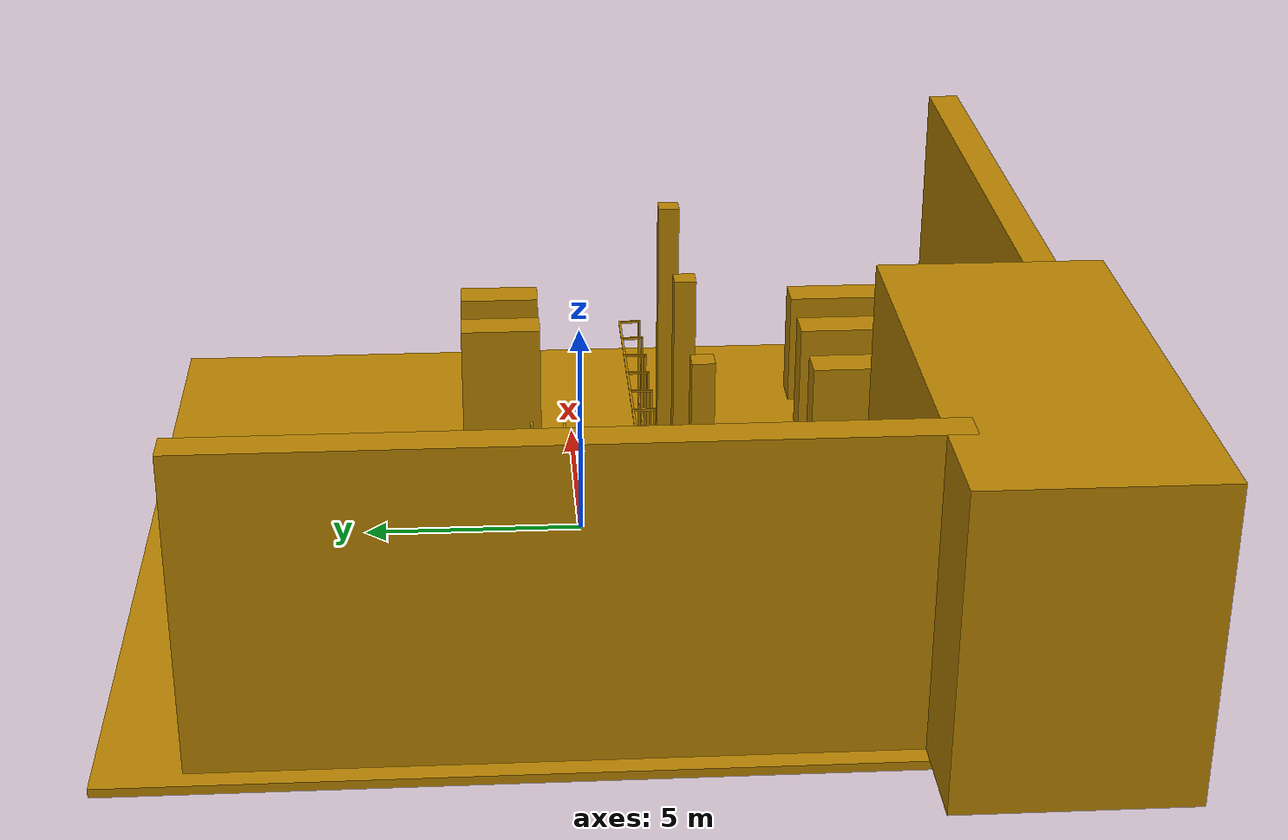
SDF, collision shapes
<?xml version="1.0" ?>
<sdf version="1.6">
  <model name="workcell">
    <static>true</static>
    <link name="link">
      <visual name="visual">
        <geometry>
          <mesh>
            <uri>model://workcell/meshes/mesh.dae</uri>
          </mesh>
        </geometry>
      </visual>

      <collision name="floor">
        <pose>0 0 -0.1 0 0 0</pose>
        <geometry>
          <box>
            <size>20.1026 20.1026 0.2</size>
          </box>
        </geometry>

          <surface>
          <contact>
            <ode>
              <max_vel>0.0</max_vel>
              <min_depth>0.001</min_depth>
            </ode>
          </contact>
          </surface>
      </collision>

      <collision name="wall1">
        <pose>4.13686 -10.02116 3.48855 0 0 0</pose>
        <geometry>
          <box>
            <size>12.07683 0.72902 6.97771</size>
          </box>
        </geometry>
      </collision>

      <collision name="wall2">
        <pose>-6.58151 -8.924 3.48855 0 0 0</pose>
        <geometry>
          <box>
            <size>10.59206 5.00198 6.97771</size>
          </box>
        </geometry>
      </collision>

      <collision name="wall3">
        <pose>-9.25721 0.6135 3.48855 0 0 0</pose>
        <geometry>
          <box>
            <size>0.72902 15.29079 6.97771</size>
          </box>
        </geometry>
      </collision>

      <collision name="rack1">
        <pose>7.35056 1.74430 1.41643054 0 0 0</pose>
        <geometry>
          <box>
            <size>0.84444041 1.95580823 2.83286108</size>
          </box>
        </geometry>
      </collision>

      <collision name="rack2">
        <pose>5.36795 1.74430 1.41643054 0 0 0</pose>
        <geometry>
          <box>
            <size>0.84444041 1.95580823 2.83286108</size>
          </box>
        </geometry>
      </collision>

      <collision name="rack3">
        <pose>7.00142 -7.64670 1.41643054 0 0 0</pose>
        <geometry>
          <box>
            <size>0.84444041 3.91161646 2.83286108</size>
          </box>
        </geometry>
      </collision>

      <collision name="rack4">
        <pose>4.97338 -7.64670 1.41643054 0 0 0</pose>
        <geometry>
          <box>
            <size>0.84444041 3.91161646 2.83286108</size>
          </box>
        </geometry>
      </collision>

      <collision name="rack5">
        <pose>2.66949 -7.64670 1.41643054 0 0 0</pose>
        <geometry>
          <box>
            <size>0.84444041 3.91161646 2.83286108</size>
          </box>
        </geometry>
      </collision>

      <collision name="large_pallet1">
        <pose>-3.33609 6.31883 1.04257 0 0 0</pose>
        <geometry>
          <box>
            <size>2.14726 1.79349 2.08514</size>
          </box>
        </geometry>
      </collision>

      <collision name="large_pallet2">
        <pose>-5.74492 6.31883 1.04257 0 0 0</pose>
        <geometry>
          <box>
            <size>2.14726 1.79349 2.08514</size>
          </box>
        </geometry>
      </collision>

      <collision name="large_pallet3">
        <pose>-7.55868 1.91644 1.04257 0 0 0</pose>
        <geometry>
          <box>
            <size>2.14726 1.79432 2.08514</size>
          </box>
        </geometry>
      </collision>

      <collision name="empty_pallet1">
        <pose>-5.29667 1.91644 0.1636 0 0 0</pose>
        <geometry>
          <box>
            <size>2.14726 1.79349 0.32720</size>
          </box>
        </geometry>
      </collision>

      <collision name="box_pallet1">
        <pose>-1.09806 6.31883 0.61958 0 0 0</pose>
        <geometry>
          <box>
            <size>2.14726 1.79349 1.23916</size>
          </box>
        </geometry>
      </collision>

      <collision name="pole1">
        <pose>5.02174 -2.39478 3.022075 0 0 0</pose>
        <geometry>
          <box>
            <size>0.49161 0.49161 6.04415</size>
          </box>
        </geometry>
      </collision>

      <collision name="pole2">
        <pose>0.47071 -2.39478 3.022075 0 0 0</pose>
        <geometry>
          <box>
            <size>0.49161 0.49161 6.04415</size>
          </box>
        </geometry>
      </collision>

      <collision name="pole3">
        <pose>-3.93786 -2.39478 3.022075 0 0 0</pose>
        <geometry>
          <box>
            <size>0.49161 0.49161 6.04415</size>
          </box>
        </geometry>
      </collision>

      <collision name="control_panel">
        <pose>2.07015 1.16224 0.561315 0 0 0</pose>
        <geometry>
          <box>
            <size>0.86733 0.6001 1.12263</size>
          </box>
        </geometry>
      </collision>

      <visual name="bin_frame_1">
        <pose>-2 1.08385 1 0 0 0</pose>
        <geometry>
          <box>
            <size>0.05 0.05 2.0</size>
          </box>
        </geometry>
        <material>
          <ambient>0.725490196 0.517647059 0 1</ambient>
          <diffuse>0.725490196 0.517647059 0 1</diffuse>
        </material>
      </visual>
      <collision name="bin_frame_1_collision">
        <pose>-2 1.08385 1 0 0 0</pose>
        <geometry>
          <box>
            <size>0.05 0.05 2.0</size>
          </box>
        </geometry>
      </collision>
      <visual name="bin_frame_2">
        <pose>1.5 1.08385 1 0 0 0</pose>
        <geometry>
          <box>
            <size>0.05 0.05 2.0</size>
          </box>
        </geometry>
        <material>
          <ambient>0.725490196 0.517647059 0 1</ambient>
          <diffuse>0.725490196 0.517647059 0 1</diffuse>
        </material>
      </visual>
      <collision name="bin_frame_2_collision">
        <pose>1.5 1.08385 1 0 0 0</pose>
        <geometry>
          <box>
            <size>0.05 0.05 2.0</size>
          </box>
        </geometry>
      </collision>
      <visual name="bin_frame_3">
        <pose>-0.25 1.08385 2.0 0 0 0</pose>
        <geometry>
          <box>
            <size>3.55 0.05 0.05</size>
          </box>
        </geometry>
        <material>
          <ambient>0.725490196 0.517647059 0 1</ambient>
          <diffuse>0.725490196 0.517647059 0 1</diffuse>
        </material>
      </visual>
      <collision name="bin_frame_3_collision">
        <pose>-0.25 1.08385 2.0 0 0 0</pose>
        <geometry>
          <box>
            <size>3.55 0.05 0.05</size>
          </box>
        </geometry>
      </collision>

      <visual name="bin_frame_4">
        <pose>-2 0.31434 1 0 0 0</pose>
        <geometry>
          <box>
            <size>0.05 0.05 2.0</size>
          </box>
        </geometry>
        <material>
          <ambient>0.725490196 0.517647059 0 1</ambient>
          <diffuse>0.725490196 0.517647059 0 1</diffuse>
        </material>
      </visual>
      <collision name="bin_frame_4_collision">
        <pose>-2 0.31434 1 0 0 0</pose>
        <geometry>
          <box>
            <size>0.05 0.05 2.0</size>
          </box>
        </geometry>
      </collision>
      <visual name="bin_frame_5">
        <pose>1.5 0.31434 1 0 0 0</pose>
        <geometry>
          <box>
            <size>0.05 0.05 2.0</size>
          </box>
        </geometry>
        <material>
          <ambient>0.725490196 0.517647059 0 1</ambient>
          <diffuse>0.725490196 0.517647059 0 1</diffuse>
        </material>
      </visual>
      <collision name="bin_frame_5_collision">
        <pose>1.5 0.31434 1 0 0 0</pose>
        <geometry>
          <box>
            <size>0.05 0.05 2.0</size>
          </box>
        </geometry>
      </collision>
      <visual name="bin_frame_6">
        <pose>-0.25 0.31434 2.0 0 0 0</pose>
        <geometry>
          <box>
            <size>3.55 0.05 0.05</size>
          </box>
        </geometry>
        <material>
          <ambient>0.725490196 0.517647059 0 1</ambient>
          <diffuse>0.725490196 0.517647059 0 1</diffuse>
        </material>
      </visual>
      <collision name="bin_frame_6_collision">
        <pose>-0.25 0.31434 2.0 0 0 0</pose>
        <geometry>
          <box>
            <size>3.55 0.05 0.05</size>
          </box>
        </geometry>
      </collision>

      <visual name="bin_frame_7">
        <pose>0.96768 0.699095 2.0 0 0 0</pose>
        <geometry>
          <box>
            <size>.05 0.76951 0.05</size>
          </box>
        </geometry>
        <material>
          <ambient>0.725490196 0.517647059 0 1</ambient>
          <diffuse>0.725490196 0.517647059 0 1</diffuse>
        </material>
      </visual>
      <collision name="bin_frame_7_collision">
        <pose>0.96768 0.699095 2.0 0 0 0</pose>
        <geometry>
          <box>
            <size>.05 0.76951 0.05</size>
          </box>
        </geometry>
      </collision>

      <visual name="bin_frame_8">
        <pose>0.20268 0.699095 2.0 0 0 0</pose>
        <geometry>
          <box>
            <size>.05 0.76951 0.05</size>
          </box>
        </geometry>
        <material>
          <ambient>0.725490196 0.517647059 0 1</ambient>
          <diffuse>0.725490196 0.517647059 0 1</diffuse>
        </material>
      </visual>
      <collision name="bin_frame_8_collision">
        <pose>0.20268 0.999095 2.0 0 0 0</pose>
        <geometry>
          <box>
            <size>.05 0.76951 0.05</size>
          </box>
        </geometry>
      </collision>

      <visual name="bin_frame_9">
        <pose>-0.56232 0.699095 2.0 0 0 0</pose>
        <geometry>
          <box>
            <size>.05 0.76951 0.05</size>
          </box>
        </geometry>
        <material>
          <ambient>0.725490196 0.517647059 0 1</ambient>
          <diffuse>0.725490196 0.517647059 0 1</diffuse>
        </material>
      </visual>
      <collision name="bin_frame_9_collision">
        <pose>-0.56232 0.999095 2.0 0 0 0</pose>
        <geometry>
          <box>
            <size>.05 0.76951 0.05</size>
          </box>
        </geometry>
      </collision>

      <visual name="bin_frame_10">
        <pose>-1.32732 0.699095 2.0 0 0 0</pose>
        <geometry>
          <box>
            <size>.05 0.76951 0.05</size>
          </box>
        </geometry>
        <material>
          <ambient>0.725490196 0.517647059 0 1</ambient>
          <diffuse>0.725490196 0.517647059 0 1</diffuse>
        </material>
      </visual>
      <collision name="bin_frame_10_collision">
        <pose>-1.32732 0.999095 2.0 0 0 0</pose>
        <geometry>
          <box>
            <size>.05 0.76951 0.05</size>
          </box>
        </geometry>
      </collision>

      <visual name="conveyor_frame_1">
        <pose>0 -1.21 3 0 0 0</pose>
        <geometry>
          <box>
            <size>10.0 0.05 0.05</size>
          </box>
        </geometry>
        <material>
          <ambient>0.725490196 0.517647059 0 1</ambient>
          <diffuse>0.725490196 0.517647059 0 1</diffuse>
        </material>
      </visual>
      <collision name="conveyor_frame_1_collision">
        <pose>0 -1.21 3 0 0 0</pose>
        <geometry>
          <box>
            <size>10.0 0.05 0.05</size>
          </box>
        </geometry>
      </collision>

      <visual name="conveyor_frame_2">
        <pose>0 -1.7 .95 0 0 0</pose>
        <geometry>
          <box>
            <size>10.0 0.05 0.05</size>
          </box>
        </geometry>
        <material>
          <ambient>0.725490196 0.517647059 0 1</ambient>
          <diffuse>0.725490196 0.517647059 0 1</diffuse>
        </material>
      </visual>
      <collision name="conveyor_frame_2_collision">
        <pose>0 -1.7 .95 0 0 0</pose>
        <geometry>
          <box>
            <size>10.0 0.05 0.05</size>
          </box>
        </geometry>
      </collision>

      <visual name="conveyor_frame_3">
        <pose>5 -1.7 1.5 0 0 0</pose>
        <geometry>
          <box>
            <size>0.05 0.05 3.0</size>
          </box>
        </geometry>
        <material>
          <ambient>0.725490196 0.517647059 0 1</ambient>
          <diffuse>0.725490196 0.517647059 0 1</diffuse>
        </material>
      </visual>
      <collision name="conveyor_frame_3_collision">
        <pose>5 -1.7 1.5 0 0 0</pose>
        <geometry>
          <box>
            <size>0.05 0.05 3.0</size>
          </box>
        </geometry>
      </collision>
      <visual name="conveyor_frame_4">
        <pose>5 -1.455 3.0 0 0 0</pose>
        <geometry>
          <box>
            <size>0.05 0.54 .05</size>
          </box>
        </geometry>
        <material>
          <ambient>0.725490196 0.517647059 0 1</ambient>
          <diffuse>0.725490196 0.517647059 0 1</diffuse>
        </material>
      </visual>
      <collision name="conveyor_frame_3_collision">
        <pose>5 -1.455 3.0 0 0 0</pose>
        <geometry>
          <box>
            <size>0.05 0.54 .05</size>
          </box>
        </geometry>
      </collision>

      <visual name="conveyor_frame_5">
        <pose>4 -1.7 1.5 0 0 0</pose>
        <geometry>
          <box>
            <size>0.05 0.05 3.0</size>
          </box>
        </geometry>
        <material>
          <ambient>0.725490196 0.517647059 0 1</ambient>
          <diffuse>0.725490196 0.517647059 0 1</diffuse>
        </material>
      </visual>
      <collision name="conveyor_frame_5_collision">
        <pose>4 -1.7 1.5 0 0 0</pose>
        <geometry>
          <box>
            <size>0.05 0.05 3.0</size>
          </box>
        </geometry>
      </collision>
      <visual name="conveyor_frame_6">
        <pose>4 -1.455 3.0 0 0 0</pose>
        <geometry>
          <box>
            <size>0.05 0.54 .05</size>
          </box>
        </geometry>
        <material>
          <ambient>0.725490196 0.517647059 0 1</ambient>
          <diffuse>0.725490196 0.517647059 0 1</diffuse>
        </material>
      </visual>
      <collision name="conveyor_frame_6_collision">
        <pose>4 -1.455 3.0 0 0 0</pose>
        <geometry>
          <box>
            <size>0.05 0.54 .05</size>
          </box>
        </geometry>
      </collision>

      <visual name="conveyor_frame_7">
        <pose>3 -1.7 1.5 0 0 0</pose>
        <geometry>
          <box>
            <size>0.05 0.05 3.0</size>
          </box>
        </geometry>
        <material>
          <ambient>0.725490196 0.517647059 0 1</ambient>
          <diffuse>0.725490196 0.517647059 0 1</diffuse>
        </material>
      </visual>
      <collision name="conveyor_frame_7_collision">
        <pose>3 -1.7 1.5 0 0 0</pose>
        <geometry>
          <box>
            <size>0.05 0.05 3.0</size>
          </box>
        </geometry>
      </collision>
      <visual name="conveyor_frame_8">
        <pose>3 -1.455 3.0 0 0 0</pose>
        <geometry>
          <box>
            <size>0.05 0.54 .05</size>
          </box>
        </geometry>
        <material>
          <ambient>0.725490196 0.517647059 0 1</ambient>
          <diffuse>0.725490196 0.517647059 0 1</diffuse>
        </material>
      </visual>
      <collision name="conveyor_frame_8_collision">
        <pose>3 -1.455 3.0 0 0 0</pose>
        <geometry>
          <box>
            <size>0.05 0.54 .05</size>
          </box>
        </geometry>
      </collision>

      <visual name="conveyor_frame_9">
        <pose>2 -1.7 1.5 0 0 0</pose>
        <geometry>
          <box>
            <size>0.05 0.05 3.0</size>
          </box>
        </geometry>
        <material>
          <ambient>0.725490196 0.517647059 0 1</ambient>
          <diffuse>0.725490196 0.517647059 0 1</diffuse>
        </material>
      </visual>
      <collision name="conveyor_frame_9_collision">
        <pose>2 -1.7 1.5 0 0 0</pose>
        <geometry>
          <box>
            <size>0.05 0.05 3.0</size>
          </box>
        </geometry>
      </collision>
      <visual name="conveyor_frame_10">
        <pose>2 -1.455 3.0 0 0 0</pose>
        <geometry>
          <box>
            <size>0.05 0.54 .05</size>
          </box>
        </geometry>
        <material>
          <ambient>0.725490196 0.517647059 0 1</ambient>
          <diffuse>0.725490196 0.517647059 0 1</diffuse>
        </material>
      </visual>
      <collision name="conveyor_frame_10_collision">
        <pose>2 -1.455 3.0 0 0 0</pose>
        <geometry>
          <box>
            <size>0.05 0.54 .05</size>
          </box>
        </geometry>
      </collision>

      <visual name="conveyor_frame_11">
        <pose>1 -1.7 1.5 0 0 0</pose>
        <geometry>
          <box>
            <size>0.05 0.05 3.0</size>
          </box>
        </geometry>
        <material>
          <ambient>0.725490196 0.517647059 0 1</ambient>
          <diffuse>0.725490196 0.517647059 0 1</diffuse>
        </material>
      </visual>
      <collision name="conveyor_frame_11_collision">
        <pose>1 -1.7 1.5 0 0 0</pose>
        <geometry>
          <box>
            <size>0.05 0.05 3.0</size>
          </box>
        </geometry>
      </collision>
      <visual name="conveyor_frame_12">
        <pose>1 -1.455 3.0 0 0 0</pose>
        <geometry>
          <box>
            <size>0.05 0.54 .05</size>
          </box>
        </geometry>
        <material>
          <ambient>0.725490196 0.517647059 0 1</ambient>
          <diffuse>0.725490196 0.517647059 0 1</diffuse>
        </material>
      </visual>
      <collision name="conveyor_frame_12_collision">
        <pose>1 -1.455 3.0 0 0 0</pose>
        <geometry>
          <box>
            <size>0.05 0.54 .05</size>
          </box>
        </geometry>
      </collision>

      <visual name="conveyor_frame_13">
        <pose>0 -1.7 1.5 0 0 0</pose>
        <geometry>
          <box>
            <size>0.05 0.05 3.0</size>
          </box>
        </geometry>
        <material>
          <ambient>0.725490196 0.517647059 0 1</ambient>
          <diffuse>0.725490196 0.517647059 0 1</diffuse>
        </material>
      </visual>
      <collision name="conveyor_frame_13_collision">
        <pose>0 -1.7 1.5 0 0 0</pose>
        <geometry>
          <box>
            <size>0.05 0.05 3.0</size>
          </box>
        </geometry>
      </collision>
      <visual name="conveyor_frame_14">
        <pose>0 -1.455 3.0 0 0 0</pose>
        <geometry>
          <box>
            <size>0.05 0.54 .05</size>
          </box>
        </geometry>
        <material>
          <ambient>0.725490196 0.517647059 0 1</ambient>
          <diffuse>0.725490196 0.517647059 0 1</diffuse>
        </material>
      </visual>
      <collision name="conveyor_frame_14_collision">
        <pose>0 -1.455 3.0 0 0 0</pose>
        <geometry>
          <box>
            <size>0.05 0.54 .05</size>
          </box>
        </geometry>
      </collision>

      <visual name="conveyor_frame_15">
        <pose>-1 -1.7 1.5 0 0 0</pose>
        <geometry>
          <box>
            <size>0.05 0.05 3.0</size>
          </box>
        </geometry>
        <material>
          <ambient>0.725490196 0.517647059 0 1</ambient>
          <diffuse>0.725490196 0.517647059 0 1</diffuse>
        </material>
      </visual>
      <collision name="conveyor_frame_15_collision">
        <pose>-1 -1.7 1.5 0 0 0</pose>
        <geometry>
          <box>
            <size>0.05 0.05 3.0</size>
          </box>
        </geometry>
      </collision>
      <visual name="conveyor_frame_16">
        <pose>-1 -1.455 3.0 0 0 0</pose>
        <geometry>
          <box>
            <size>0.05 0.54 .05</size>
          </box>
        </geometry>
        <material>
          <ambient>0.725490196 0.517647059 0 1</ambient>
          <diffuse>0.725490196 0.517647059 0 1</diffuse>
        </material>
      </visual>
      <collision name="conveyor_frame_16_collision">
        <pose>-1 -1.455 3.0 0 0 0</pose>
        <geometry>
          <box>
            <size>0.05 0.54 .05</size>
          </box>
        </geometry>
      </collision>

      <visual name="conveyor_frame_17">
        <pose>-2 -1.7 1.5 0 0 0</pose>
        <geometry>
          <box>
            <size>0.05 0.05 3.0</size>
          </box>
        </geometry>
        <material>
          <ambient>0.725490196 0.517647059 0 1</ambient>
          <diffuse>0.725490196 0.517647059 0 1</diffuse>
        </material>
      </visual>
      <collision name="conveyor_frame_17_collision">
        <pose>-2 -1.7 1.5 0 0 0</pose>
        <geometry>
          <box>
            <size>0.05 0.05 3.0</size>
          </box>
        </geometry>
      </collision>
      <visual name="conveyor_frame_18">
        <pose>-2 -1.455 3.0 0 0 0</pose>
        <geometry>
          <box>
            <size>0.05 0.54 .05</size>
          </box>
        </geometry>
        <material>
          <ambient>0.725490196 0.517647059 0 1</ambient>
          <diffuse>0.725490196 0.517647059 0 1</diffuse>
        </material>
      </visual>
      <collision name="conveyor_frame_18_collision">
        <pose>-2 -1.455 3.0 0 0 0</pose>
        <geometry>
          <box>
            <size>0.05 0.54 .05</size>
          </box>
        </geometry>
      </collision>

      <visual name="conveyor_frame_19">
        <pose>-3 -1.7 1.5 0 0 0</pose>
        <geometry>
          <box>
            <size>0.05 0.05 3.0</size>
          </box>
        </geometry>
        <material>
          <ambient>0.725490196 0.517647059 0 1</ambient>
          <diffuse>0.725490196 0.517647059 0 1</diffuse>
        </material>
      </visual>
      <collision name="conveyor_frame_19_collision">
        <pose>-3 -1.7 1.5 0 0 0</pose>
        <geometry>
          <box>
            <size>0.05 0.05 3.0</size>
          </box>
        </geometry>
      </collision>
      <visual name="conveyor_frame_20">
        <pose>-3 -1.455 3.0 0 0 0</pose>
        <geometry>
          <box>
            <size>0.05 0.54 .05</size>
          </box>
        </geometry>
        <material>
          <ambient>0.725490196 0.517647059 0 1</ambient>
          <diffuse>0.725490196 0.517647059 0 1</diffuse>
        </material>
      </visual>
      <collision name="conveyor_frame_20_collision">
        <pose>-3 -1.455 3.0 0 0 0</pose>
        <geometry>
          <box>
            <size>0.05 0.54 .05</size>
          </box>
        </geometry>
      </collision>

      <visual name="conveyor_frame_21">
        <pose>-4 -1.7 1.5 0 0 0</pose>
        <geometry>
          <box>
            <size>0.05 0.05 3.0</size>
          </box>
        </geometry>
        <material>
          <ambient>0.725490196 0.517647059 0 1</ambient>
          <diffuse>0.725490196 0.517647059 0 1</diffuse>
        </material>
      </visual>
      <collision name="conveyor_frame_21_collision">
        <pose>-4 -1.7 1.5 0 0 0</pose>
        <geometry>
          <box>
            <size>0.05 0.05 3.0</size>
          </box>
        </geometry>
      </collision>
      <visual name="conveyor_frame_22">
        <pose>-4 -1.455 3.0 0 0 0</pose>
        <geometry>
          <box>
            <size>0.05 0.54 .05</size>
          </box>
        </geometry>
        <material>
          <ambient>0.725490196 0.517647059 0 1</ambient>
          <diffuse>0.725490196 0.517647059 0 1</diffuse>
        </material>
      </visual>
      <collision name="conveyor_frame_22_collision">
        <pose>-4 -1.455 3.0 0 0 0</pose>
        <geometry>
          <box>
            <size>0.05 0.54 .05</size>
          </box>
        </geometry>
      </collision>

      <visual name="conveyor_frame_23">
        <pose>-5 -1.7 1.5 0 0 0</pose>
        <geometry>
          <box>
            <size>0.05 0.05 3.0</size>
          </box>
        </geometry>
        <material>
          <ambient>0.725490196 0.517647059 0 1</ambient>
          <diffuse>0.725490196 0.517647059 0 1</diffuse>
        </material>
      </visual>
      <collision name="conveyor_frame_23_collision">
        <pose>-5 -1.7 1.5 0 0 0</pose>
        <geometry>
          <box>
            <size>0.05 0.05 3.0</size>
          </box>
        </geometry>
      </collision>
      <visual name="conveyor_frame_24">
        <pose>-5 -1.455 3.0 0 0 0</pose>
        <geometry>
          <box>
            <size>0.05 0.54 .05</size>
          </box>
        </geometry>
        <material>
          <ambient>0.725490196 0.517647059 0 1</ambient>
          <diffuse>0.725490196 0.517647059 0 1</diffuse>
        </material>
      </visual>
      <collision name="conveyor_frame_24_collision">
        <pose>-5 -1.455 3.0 0 0 0</pose>
        <geometry>
          <box>
            <size>0.05 0.54 .05</size>
          </box>
        </geometry>
      </collision>
    </link>

  </model>
</sdf>
